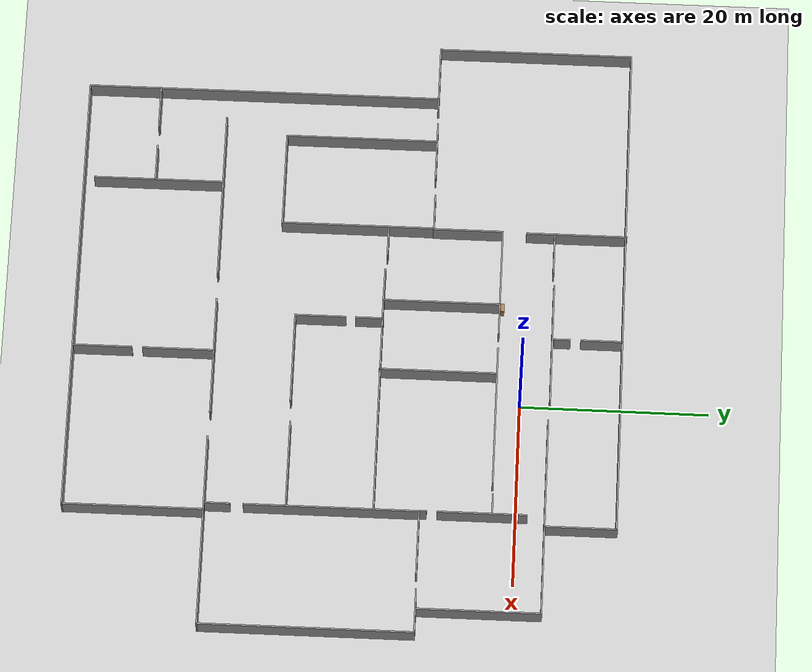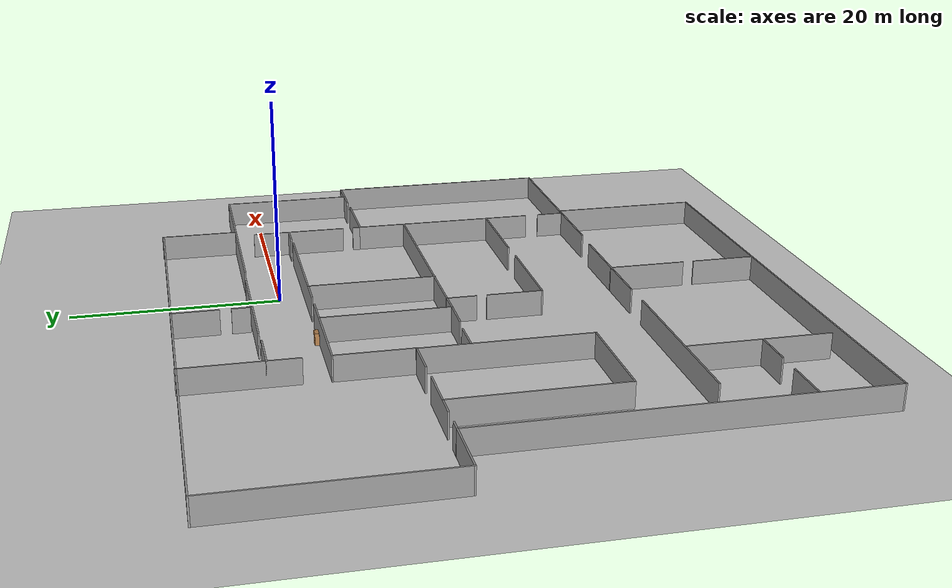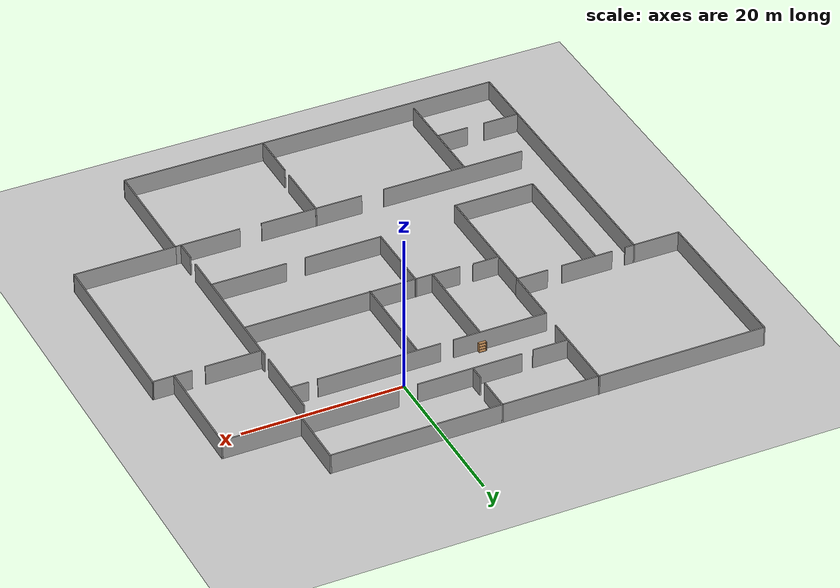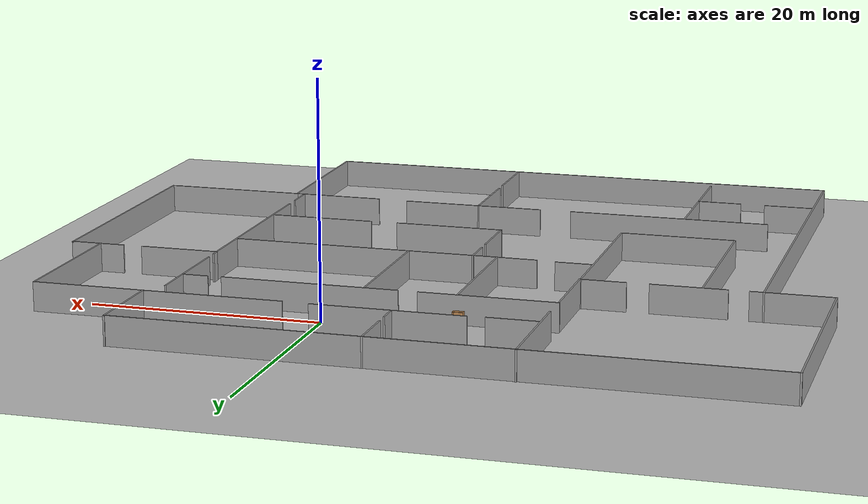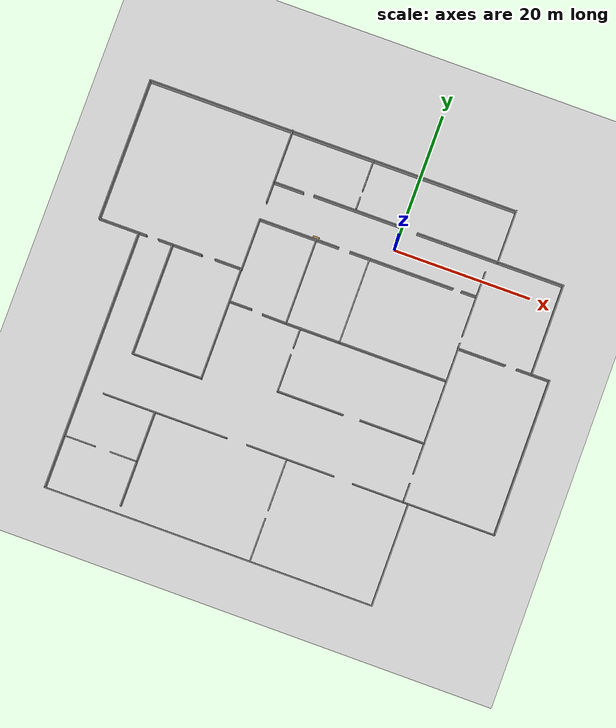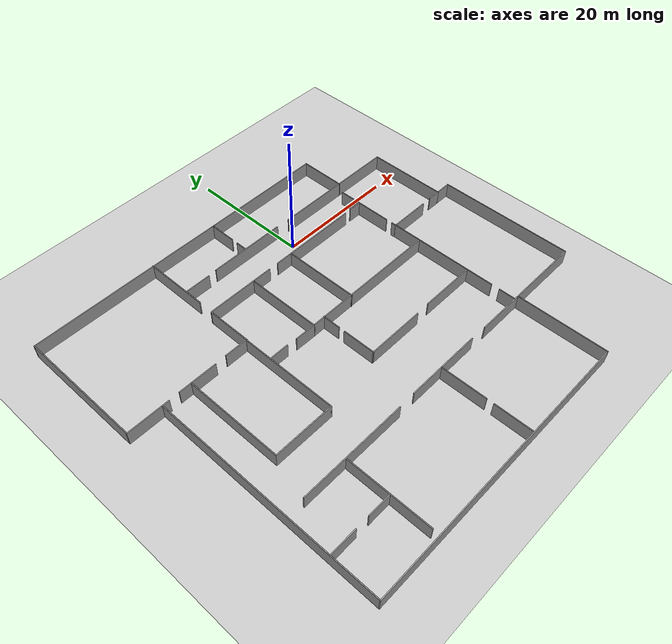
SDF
<sdf version="1.6">
 <world name="default">
  <light name="sun" type="directional">
   <pose>0 0 10 0 -0 0</pose>
   <diffuse>0.8 0.8 0.8 1</diffuse>
   <specular>0.2 0.2 0.2 1</specular>
   <attenuation>
    <range>1000</range>
    <constant>0.9</constant>
    <linear>0.01</linear>
    <quadratic>0.001</quadratic>
   </attenuation>
   <direction>-0.5 0.1 -0.9</direction>
  </light>
  <model name="ground_plane">
   <static>1</static>
   <link name="link">
    <collision name="collision">
     <geometry><plane><normal>0 0 1</normal><size>100 100</size></plane></geometry>
     <surface><friction><ode><mu>100</mu><mu2>50</mu2></ode></friction></surface>
    </collision>
    <visual name="visual">
     <cast_shadows>0</cast_shadows>
     <geometry><plane><normal>0 0 1</normal><size>100 100</size></plane></geometry>
     <material>
      <script><uri>file://media/materials/scripts/gazebo.material</uri><name>Gazebo/Grey</name></script>
     </material>
    </visual>
   </link>
  </model>
  <gravity>0 0 -9.8</gravity>
  <magnetic_field>6e-06 2.3e-05 -4.2e-05</magnetic_field>
  <atmosphere type="adiabatic"/>
  <physics name="default_physics" default="0" type="ode">
   <max_step_size>0.001</max_step_size>
   <real_time_factor>1</real_time_factor>
   <real_time_update_rate>1000</real_time_update_rate>
  </physics>
  <scene><ambient>0.4 0.4 0.4 1</ambient><background>0.7 0.7 0.7 1</background><shadows>1</shadows></scene>
  <audio><device>default</device></audio>
  <spherical_coordinates>
   <surface_model>EARTH_WGS84</surface_model>
   <latitude_deg>0</latitude_deg>
   <longitude_deg>0</longitude_deg>
   <elevation>0</elevation>
   <heading_deg>0</heading_deg>
  </spherical_coordinates>
  <model name="Untitled">
   <pose>-6.86367 -18.3853 0 0 -0 0</pose>
   <link name="Wall_10">
    <collision name="Wall_10_Collision">
     <geometry><box><size>48 0.15 2.5</size></box></geometry>
     <pose>0 0 1.25 0 -0 0</pose>
    </collision>
    <visual name="Wall_10_Visual">
     <pose>0 0 1.25 0 -0 0</pose>
     <geometry><box><size>48 0.15 2.5</size></box></geometry>
     <material>
      <script><uri>file://media/materials/scripts/gazebo.material</uri><name>Gazebo/Grey</name></script>
      <ambient>1 1 1 1</ambient>
     </material>
     <meta><layer>0</layer></meta>
    </visual>
    <pose>-3.38843 -29.0855 0 0 -0 -3.14158</pose>
   </link>
   <link name="Wall_11">
    <collision name="Wall_11_Collision">
     <geometry><box><size>37.681 0.15 2.5</size></box></geometry>
     <pose>0 0 1.25 0 -0 0</pose>
    </collision>
    <visual name="Wall_11_Visual">
     <pose>0 0 1.25 0 -0 0</pose>
     <geometry><box><size>37.681 0.15 2.5</size></box></geometry>
     <material>
      <script><uri>file://media/materials/scripts/gazebo.material</uri><name>Gazebo/Grey</name></script>
      <ambient>1 1 1 1</ambient>
     </material>
     <meta><layer>0</layer></meta>
    </visual>
    <pose>-27.3133 -10.3202 0 0 -0 1.5708</pose>
   </link>
   <link name="Wall_12">
    <collision name="Wall_12_Collision">
     <geometry><box><size>5.97327 0.15 2.5</size></box></geometry>
     <pose>0 0 1.25 0 -0 0</pose>
    </collision>
    <visual name="Wall_12_Visual">
     <pose>0 0 1.25 0 -0 0</pose>
     <geometry><box><size>5.97327 0.15 2.5</size></box></geometry>
     <material>
      <script><uri>file://media/materials/scripts/gazebo.material</uri><name>Gazebo/Grey</name></script>
      <ambient>1 1 1 1</ambient>
     </material>
     <meta><layer>0</layer></meta>
    </visual>
    <pose>-30.2248 8.44476 0 0 -0 -3.14142</pose>
   </link>
   <link name="Wall_13">
    <collision name="Wall_13_Collision">
     <geometry><box><size>20.708 0.15 2.5</size></box></geometry>
     <pose>0 0 1.25 0 -0 0</pose>
    </collision>
    <visual name="Wall_13_Visual">
     <pose>0 0 1.25 0 -0 0</pose>
     <geometry><box><size>20.708 0.15 2.5</size></box></geometry>
     <material>
      <script><uri>file://media/materials/scripts/gazebo.material</uri><name>Gazebo/Grey</name></script>
      <ambient>1 1 1 1</ambient>
     </material>
     <meta><layer>0</layer></meta>
    </visual>
    <pose>-33.1363 18.7233 0 0 -0 1.5708</pose>
   </link>
   <link name="Wall_18">
    <collision name="Wall_18_Collision">
     <geometry><box><size>8.25 0.15 2.5</size></box></geometry>
     <pose>0 0 1.25 0 -0 0</pose>
    </collision>
    <visual name="Wall_18_Visual">
     <pose>0 0 1.25 0 -0 0</pose>
     <geometry><box><size>8.25 0.15 2.5</size></box></geometry>
     <material>
      <script><uri>file://media/materials/scripts/gazebo.material</uri><name>Gazebo/Grey</name></script>
      <ambient>1 1 1 1</ambient>
     </material>
     <meta><layer>0</layer></meta>
    </visual>
    <pose>16.4865 -14.2353 0 0 -0 3.14159</pose>
   </link>
   <link name="Wall_2">
    <collision name="Wall_2_Collision">
     <geometry><box><size>54.223 0.15 2.5</size></box></geometry>
     <pose>0 0 1.25 0 -0 0</pose>
    </collision>
    <visual name="Wall_2_Visual">
     <pose>0 0 1.25 0 -0 0</pose>
     <geometry><box><size>54.223 0.15 2.5</size></box></geometry>
     <material>
      <script><uri>file://media/materials/scripts/gazebo.material</uri><name>Gazebo/Grey</name></script>
      <ambient>1 1 1 1</ambient>
     </material>
     <meta><layer>0</layer></meta>
    </visual>
    <pose>-6.09985 29.002 0 0 -0 0</pose>
   </link>
   <link name="Wall_20">
    <collision name="Wall_20_Collision">
     <geometry><box><size>12.869 0.15 2.5</size></box></geometry>
     <pose>0 0 1.25 0 -0 0</pose>
    </collision>
    <visual name="Wall_20_Visual">
     <pose>0 0 1.25 0 -0 0</pose>
     <geometry><box><size>12.869 0.15 2.5</size></box></geometry>
     <material>
      <script><uri>file://media/materials/scripts/gazebo.material</uri><name>Gazebo/Grey</name></script>
      <ambient>1 1 1 1</ambient>
     </material>
     <meta><layer>0</layer></meta>
    </visual>
    <pose>3.22315 -14.1347 0 0 -0 3.14159</pose>
   </link>
   <link name="Wall_22">
    <collision name="Wall_22_Collision">
     <geometry><box><size>18.15 0.15 2.5</size></box></geometry>
     <pose>0 0 1.25 0 -0 0</pose>
    </collision>
    <visual name="Wall_22_Visual">
     <pose>0 0 1.25 0 -0 0</pose>
     <geometry><box><size>18.15 0.15 2.5</size></box></geometry>
     <material>
      <script><uri>file://media/materials/scripts/gazebo.material</uri><name>Gazebo/Grey</name></script>
      <ambient>1 1 1 1</ambient>
     </material>
     <meta><layer>0</layer></meta>
    </visual>
    <pose>-15.1363 -14.2037 0 0 -0 3.14159</pose>
   </link>
   <link name="Wall_24">
    <collision name="Wall_24_Collision">
     <geometry><box><size>13.75 0.15 2.5</size></box></geometry>
     <pose>0 0 1.25 0 -0 0</pose>
    </collision>
    <visual name="Wall_24_Visual">
     <pose>0 0 1.25 0 -0 0</pose>
     <geometry><box><size>13.75 0.15 2.5</size></box></geometry>
     <material>
      <script><uri>file://media/materials/scripts/gazebo.material</uri><name>Gazebo/Grey</name></script>
      <ambient>1 1 1 1</ambient>
     </material>
     <meta><layer>0</layer></meta>
    </visual>
    <pose>-16.6456 -21.1328 0 0 -0 -1.5708</pose>
   </link>
   <link name="Wall_26">
    <collision name="Wall_26_Collision">
     <geometry><box><size>7.636 0.15 2.5</size></box></geometry>
     <pose>0 0 1.25 0 -0 0</pose>
    </collision>
    <visual name="Wall_26_Visual">
     <pose>0 0 1.25 0 -0 0</pose>
     <geometry><box><size>7.636 0.15 2.5</size></box></geometry>
     <material>
      <script><uri>file://media/materials/scripts/gazebo.material</uri><name>Gazebo/Grey</name></script>
      <ambient>1 1 1 1</ambient>
     </material>
     <meta><layer>0</layer></meta>
    </visual>
    <pose>2.68865 -17.8717 0 0 -0 -1.5708</pose>
   </link>
   <link name="Wall_28">
    <collision name="Wall_28_Collision">
     <geometry><box><size>6.25 0.15 2.5</size></box></geometry>
     <pose>0 0 1.25 0 -0 0</pose>
    </collision>
    <visual name="Wall_28_Visual">
     <pose>0 0 1.25 0 -0 0</pose>
     <geometry><box><size>6.25 0.15 2.5</size></box></geometry>
     <material>
      <script><uri>file://media/materials/scripts/gazebo.material</uri><name>Gazebo/Grey</name></script>
      <ambient>1 1 1 1</ambient>
     </material>
     <meta><layer>0</layer></meta>
    </visual>
    <pose>2.68817 -25.8958 0 0 -0 -1.5708</pose>
   </link>
   <link name="Wall_3">
    <collision name="Wall_3_Collision">
     <geometry><box><size>7.74888 0.15 2.5</size></box></geometry>
     <pose>0 0 1.25 0 -0 0</pose>
    </collision>
    <visual name="Wall_3_Visual">
     <pose>0 0 1.25 0 -0 0</pose>
     <geometry><box><size>7.74888 0.15 2.5</size></box></geometry>
     <material>
      <script><uri>file://media/materials/scripts/gazebo.material</uri><name>Gazebo/Grey</name></script>
      <ambient>1 1 1 1</ambient>
     </material>
     <meta><layer>0</layer></meta>
    </visual>
    <pose>20.9366 25.2641 0 0 -0 -1.57082</pose>
   </link>
   <link name="Wall_30">
    <collision name="Wall_30_Collision">
     <geometry><box><size>4.5 0.15 2.5</size></box></geometry>
     <pose>0 0 1.25 0 -0 0</pose>
    </collision>
    <visual name="Wall_30_Visual">
     <pose>0 0 1.25 0 -0 0</pose>
     <geometry><box><size>4.5 0.15 2.5</size></box></geometry>
     <material>
      <script><uri>file://media/materials/scripts/gazebo.material</uri><name>Gazebo/Grey</name></script>
      <ambient>1 1 1 1</ambient>
     </material>
     <meta><layer>0</layer></meta>
    </visual>
    <pose>-25.0531 -21.4469 0 0 -0 0</pose>
   </link>
   <link name="Wall_32">
    <collision name="Wall_32_Collision">
     <geometry><box><size>4 0.15 2.5</size></box></geometry>
     <pose>0 0 1.25 0 -0 0</pose>
    </collision>
    <visual name="Wall_32_Visual">
     <pose>0 0 1.25 0 -0 0</pose>
     <geometry><box><size>4 0.15 2.5</size></box></geometry>
     <material>
      <script><uri>file://media/materials/scripts/gazebo.material</uri><name>Gazebo/Grey</name></script>
      <ambient>1 1 1 1</ambient>
     </material>
     <meta><layer>0</layer></meta>
    </visual>
    <pose>-18.6071 -21.4469 0 0 -0 3.14159</pose>
   </link>
   <link name="Wall_34">
    <collision name="Wall_34_Collision">
     <geometry><box><size>2.25 0.15 2.5</size></box></geometry>
     <pose>0 0 1.25 0 -0 0</pose>
    </collision>
    <visual name="Wall_34_Visual">
     <pose>0 0 1.25 0 -0 0</pose>
     <geometry><box><size>2.25 0.15 2.5</size></box></geometry>
     <material>
      <script><uri>file://media/materials/scripts/gazebo.material</uri><name>Gazebo/Grey</name></script>
      <ambient>1 1 1 1</ambient>
     </material>
     <meta><layer>0</layer></meta>
    </visual>
    <pose>29.4865 8.36469 0 0 -0 3.14159</pose>
   </link>
   <link name="Wall_36">
    <collision name="Wall_36_Collision">
     <geometry><box><size>2.75 0.15 2.5</size></box></geometry>
     <pose>0 0 1.25 0 -0 0</pose>
    </collision>
    <visual name="Wall_36_Visual">
     <pose>0 0 1.25 0 -0 0</pose>
     <geometry><box><size>2.75 0.15 2.5</size></box></geometry>
     <material>
      <script><uri>file://media/materials/scripts/gazebo.material</uri><name>Gazebo/Grey</name></script>
      <ambient>1 1 1 1</ambient>
     </material>
     <meta><layer>0</layer></meta>
    </visual>
    <pose>19.7986 -12.8292 0 0 -0 1.5708</pose>
   </link>
   <link name="Wall_38">
    <collision name="Wall_38_Collision">
     <geometry><box><size>18.5 0.15 2.5</size></box></geometry>
     <pose>0 0 1.25 0 -0 0</pose>
    </collision>
    <visual name="Wall_38_Visual">
     <pose>0 0 1.25 0 -0 0</pose>
     <geometry><box><size>18.5 0.15 2.5</size></box></geometry>
     <material>
      <script><uri>file://media/materials/scripts/gazebo.material</uri><name>Gazebo/Grey</name></script>
      <ambient>1 1 1 1</ambient>
     </material>
     <meta><layer>0</layer></meta>
    </visual>
    <pose>19.7986 -0.86493 0 0 -0 1.5708</pose>
   </link>
   <link name="Wall_4">
    <collision name="Wall_4_Collision">
     <geometry><box><size>9.75 0.15 2.5</size></box></geometry>
     <pose>0 0 1.25 0 -0 0</pose>
    </collision>
    <visual name="Wall_4_Visual">
     <pose>0 0 1.25 0 -0 0</pose>
     <geometry><box><size>9.75 0.15 2.5</size></box></geometry>
     <material>
      <script><uri>file://media/materials/scripts/gazebo.material</uri><name>Gazebo/Grey</name></script>
      <ambient>1 1 1 1</ambient>
     </material>
     <meta><layer>0</layer></meta>
    </visual>
    <pose>25.7365 21.4647 0 0 -0 0</pose>
   </link>
   <link name="Wall_40">
    <collision name="Wall_40_Collision">
     <geometry><box><size>7 0.15 2.5</size></box></geometry>
     <pose>0 0 1.25 0 -0 0</pose>
    </collision>
    <visual name="Wall_40_Visual">
     <pose>0 0 1.25 0 -0 0</pose>
     <geometry><box><size>7 0.15 2.5</size></box></geometry>
     <material>
      <script><uri>file://media/materials/scripts/gazebo.material</uri><name>Gazebo/Grey</name></script>
      <ambient>1 1 1 1</ambient>
     </material>
     <meta><layer>0</layer></meta>
    </visual>
    <pose>23.2236 8.31007 0 0 -0 0</pose>
   </link>
   <link name="Wall_42">
    <collision name="Wall_42_Collision">
     <geometry><box><size>0.75 0.15 2.5</size></box></geometry>
     <pose>0 0 1.25 0 -0 0</pose>
    </collision>
    <visual name="Wall_42_Visual">
     <pose>0 0 1.25 0 -0 0</pose>
     <geometry><box><size>0.75 0.15 2.5</size></box></geometry>
     <material>
      <script><uri>file://media/materials/scripts/gazebo.material</uri><name>Gazebo/Grey</name></script>
      <ambient>1 1 1 1</ambient>
     </material>
     <meta><layer>0</layer></meta>
    </visual>
    <pose>19.7645 8.73044 0 0 -0 1.5708</pose>
   </link>
   <link name="Wall_44">
    <collision name="Wall_44_Collision">
     <geometry><box><size>9.5 0.15 2.5</size></box></geometry>
     <pose>0 0 1.25 0 -0 0</pose>
    </collision>
    <visual name="Wall_44_Visual">
     <pose>0 0 1.25 0 -0 0</pose>
     <geometry><box><size>9.5 0.15 2.5</size></box></geometry>
     <material>
      <script><uri>file://media/materials/scripts/gazebo.material</uri><name>Gazebo/Grey</name></script>
      <ambient>1 1 1 1</ambient>
     </material>
     <meta><layer>0</layer></meta>
    </visual>
    <pose>19.7645 14.9017 0 0 -0 1.5708</pose>
   </link>
   <link name="Wall_47">
    <collision name="Wall_47_Collision">
     <geometry><box><size>12 0.15 2.5</size></box></geometry>
     <pose>0 0 1.25 0 -0 0</pose>
    </collision>
    <visual name="Wall_47_Visual">
     <pose>0 0 1.25 0 -0 0</pose>
     <geometry><box><size>12 0.15 2.5</size></box></geometry>
     <material>
      <script><uri>file://media/materials/scripts/gazebo.material</uri><name>Gazebo/Grey</name></script>
      <ambient>1 1 1 1</ambient>
     </material>
     <meta><layer>0</layer></meta>
    </visual>
    <pose>15.0115 21.4647 0 0 -0 3.14159</pose>
   </link>
   <link name="Wall_49">
    <collision name="Wall_49_Collision">
     <geometry><box><size>1.25 0.15 2.5</size></box></geometry>
     <pose>0 0 1.25 0 -0 0</pose>
    </collision>
    <visual name="Wall_49_Visual">
     <pose>0 0 1.25 0 -0 0</pose>
     <geometry><box><size>1.25 0.15 2.5</size></box></geometry>
     <material>
      <script><uri>file://media/materials/scripts/gazebo.material</uri><name>Gazebo/Grey</name></script>
      <ambient>1 1 1 1</ambient>
     </material>
     <meta><layer>0</layer></meta>
    </visual>
    <pose>-26.7633 8.44526 0 0 -0 0</pose>
   </link>
   <link name="Wall_5">
    <collision name="Wall_5_Collision">
     <geometry><box><size>13.25 0.15 2.5</size></box></geometry>
     <pose>0 0 1.25 0 -0 0</pose>
    </collision>
    <visual name="Wall_5_Visual">
     <pose>0 0 1.25 0 -0 0</pose>
     <geometry><box><size>13.25 0.15 2.5</size></box></geometry>
     <material>
      <script><uri>file://media/materials/scripts/gazebo.material</uri><name>Gazebo/Grey</name></script>
      <ambient>1 1 1 1</ambient>
     </material>
     <meta><layer>0</layer></meta>
    </visual>
    <pose>30.5365 14.9147 0 0 -0 -1.5708</pose>
   </link>
   <link name="Wall_51">
    <collision name="Wall_51_Collision">
     <geometry><box><size>6.5 0.15 2.5</size></box></geometry>
     <pose>0 0 1.25 0 -0 0</pose>
    </collision>
    <visual name="Wall_51_Visual">
     <pose>0 0 1.25 0 -0 0</pose>
     <geometry><box><size>6.5 0.15 2.5</size></box></geometry>
     <material>
      <script><uri>file://media/materials/scripts/gazebo.material</uri><name>Gazebo/Grey</name></script>
      <ambient>1 1 1 1</ambient>
     </material>
     <meta><layer>0</layer></meta>
    </visual>
    <pose>-21.2029 8.48047 0 0 -0 0</pose>
   </link>
   <link name="Wall_53">
    <collision name="Wall_53_Collision">
     <geometry><box><size>4 0.15 2.5</size></box></geometry>
     <pose>0 0 1.25 0 -0 0</pose>
    </collision>
    <visual name="Wall_53_Visual">
     <pose>0 0 1.25 0 -0 0</pose>
     <geometry><box><size>4 0.15 2.5</size></box></geometry>
     <material>
      <script><uri>file://media/materials/scripts/gazebo.material</uri><name>Gazebo/Grey</name></script>
      <ambient>1 1 1 1</ambient>
     </material>
     <meta><layer>0</layer></meta>
    </visual>
    <pose>-14.0851 8.54199 0 0 -0 0</pose>
   </link>
   <link name="Wall_54">
    <collision name="Wall_54_Collision">
     <geometry><box><size>7.5 0.15 2.5</size></box></geometry>
     <pose>0 0 1.25 0 -0 0</pose>
    </collision>
    <visual name="Wall_54_Visual">
     <pose>0 0 1.25 0 -0 0</pose>
     <geometry><box><size>7.5 0.15 2.5</size></box></geometry>
     <material>
      <script><uri>file://media/materials/scripts/gazebo.material</uri><name>Gazebo/Grey</name></script>
      <ambient>1 1 1 1</ambient>
     </material>
     <meta><layer>0</layer></meta>
    </visual>
    <pose>-12.1602 12.2171 0 0 -0 1.57083</pose>
   </link>
   <link name="Wall_56">
    <collision name="Wall_56_Collision">
     <geometry><box><size>11.75 0.15 2.5</size></box></geometry>
     <pose>0 0 1.25 0 -0 0</pose>
    </collision>
    <visual name="Wall_56_Visual">
     <pose>0 0 1.25 0 -0 0</pose>
     <geometry><box><size>11.75 0.15 2.5</size></box></geometry>
     <material>
      <script><uri>file://media/materials/scripts/gazebo.material</uri><name>Gazebo/Grey</name></script>
      <ambient>1 1 1 1</ambient>
     </material>
     <meta><layer>0</layer></meta>
    </visual>
    <pose>-6.36035 15.8923 0 0 -0 0</pose>
   </link>
   <link name="Wall_58">
    <collision name="Wall_58_Collision">
     <geometry><box><size>16.25 0.15 2.5</size></box></geometry>
     <pose>0 0 1.25 0 -0 0</pose>
    </collision>
    <visual name="Wall_58_Visual">
     <pose>0 0 1.25 0 -0 0</pose>
     <geometry><box><size>16.25 0.15 2.5</size></box></geometry>
     <material>
      <script><uri>file://media/materials/scripts/gazebo.material</uri><name>Gazebo/Grey</name></script>
      <ambient>1 1 1 1</ambient>
     </material>
     <meta><layer>0</layer></meta>
    </visual>
    <pose>-22.3294 0.427688 0 0 -0 -1.5708</pose>
   </link>
   <link name="Wall_59">
    <collision name="Wall_59_Collision">
     <geometry><box><size>10.25 0.15 2.5</size></box></geometry>
     <pose>0 0 1.25 0 -0 0</pose>
    </collision>
    <visual name="Wall_59_Visual">
     <pose>0 0 1.25 0 -0 0</pose>
     <geometry><box><size>10.25 0.15 2.5</size></box></geometry>
     <material>
      <script><uri>file://media/materials/scripts/gazebo.material</uri><name>Gazebo/Grey</name></script>
      <ambient>1 1 1 1</ambient>
     </material>
     <meta><layer>0</layer></meta>
    </visual>
    <pose>-17.2794 -7.62253 0 0 -0 -4.2e-05</pose>
   </link>
   <link name="Wall_6">
    <collision name="Wall_6_Collision">
     <geometry><box><size>2.75 0.15 2.5</size></box></geometry>
     <pose>0 0 1.25 0 -0 0</pose>
    </collision>
    <visual name="Wall_6_Visual">
     <pose>0 0 1.25 0 -0 0</pose>
     <geometry><box><size>2.75 0.15 2.5</size></box></geometry>
     <material>
      <script><uri>file://media/materials/scripts/gazebo.material</uri><name>Gazebo/Grey</name></script>
      <ambient>1 1 1 1</ambient>
     </material>
     <meta><layer>0</layer></meta>
    </visual>
    <pose>31.8365 8.36469 0 0 -0 0</pose>
   </link>
   <link name="Wall_60">
    <collision name="Wall_60_Collision">
     <geometry><box><size>16.315 0.15 2.5</size></box></geometry>
     <pose>0 0 1.25 0 -0 0</pose>
    </collision>
    <visual name="Wall_60_Visual">
     <pose>0 0 1.25 0 -0 0</pose>
     <geometry><box><size>16.315 0.15 2.5</size></box></geometry>
     <material>
      <script><uri>file://media/materials/scripts/gazebo.material</uri><name>Gazebo/Grey</name></script>
      <ambient>1 1 1 1</ambient>
     </material>
     <meta><layer>0</layer></meta>
    </visual>
    <pose>-12.2293 0.459762 0 0 -0 1.5708</pose>
   </link>
   <link name="Wall_62">
    <collision name="Wall_62_Collision">
     <geometry><box><size>3.25 0.15 2.5</size></box></geometry>
     <pose>0 0 1.25 0 -0 0</pose>
    </collision>
    <visual name="Wall_62_Visual">
     <pose>0 0 1.25 0 -0 0</pose>
     <geometry><box><size>3.25 0.15 2.5</size></box></geometry>
     <material>
      <script><uri>file://media/materials/scripts/gazebo.material</uri><name>Gazebo/Grey</name></script>
      <ambient>1 1 1 1</ambient>
     </material>
     <meta><layer>0</layer></meta>
    </visual>
    <pose>-10.5441 3.73374 0 0 -0 0</pose>
   </link>
   <link name="Wall_64">
    <collision name="Wall_64_Collision">
     <geometry><box><size>3.50032 0.15 2.5</size></box></geometry>
     <pose>0 0 1.25 0 -0 0</pose>
    </collision>
    <visual name="Wall_64_Visual">
     <pose>0 0 1.25 0 -0 0</pose>
     <geometry><box><size>3.50032 0.15 2.5</size></box></geometry>
     <material>
      <script><uri>file://media/materials/scripts/gazebo.material</uri><name>Gazebo/Grey</name></script>
      <ambient>1 1 1 1</ambient>
     </material>
     <meta><layer>0</layer></meta>
    </visual>
    <pose>-5.58844 3.55439 0 0 -0 -0.013887</pose>
   </link>
   <link name="Wall_65">
    <collision name="Wall_65_Collision">
     <geometry><box><size>12.5 0.15 2.5</size></box></geometry>
     <pose>0 0 1.25 0 -0 0</pose>
    </collision>
    <visual name="Wall_65_Visual">
     <pose>0 0 1.25 0 -0 0</pose>
     <geometry><box><size>12.5 0.15 2.5</size></box></geometry>
     <material>
      <script><uri>file://media/materials/scripts/gazebo.material</uri><name>Gazebo/Grey</name></script>
      <ambient>1 1 1 1</ambient>
     </material>
     <meta><layer>0</layer></meta>
    </visual>
    <pose>-3.82039 9.70612 0 0 -0 1.5708</pose>
   </link>
   <link name="Wall_67">
    <collision name="Wall_67_Collision">
     <geometry><box><size>12.5 0.15 2.5</size></box></geometry>
     <pose>0 0 1.25 0 -0 0</pose>
    </collision>
    <visual name="Wall_67_Visual">
     <pose>0 0 1.25 0 -0 0</pose>
     <geometry><box><size>12.5 0.15 2.5</size></box></geometry>
     <material>
      <script><uri>file://media/materials/scripts/gazebo.material</uri><name>Gazebo/Grey</name></script>
      <ambient>1 1 1 1</ambient>
     </material>
     <meta><layer>0</layer></meta>
    </visual>
    <pose>4.03939 9.65312 0 0 -0 -1.5708</pose>
   </link>
   <link name="Wall_7">
    <collision name="Wall_7_Collision">
     <geometry><box><size>22.75 0.15 2.5</size></box></geometry>
     <pose>0 0 1.25 0 -0 0</pose>
    </collision>
    <visual name="Wall_7_Visual">
     <pose>0 0 1.25 0 -0 0</pose>
     <geometry><box><size>22.75 0.15 2.5</size></box></geometry>
     <material>
      <script><uri>file://media/materials/scripts/gazebo.material</uri><name>Gazebo/Grey</name></script>
      <ambient>1 1 1 1</ambient>
     </material>
     <meta><layer>0</layer></meta>
    </visual>
    <pose>33.1365 -2.93531 0 0 -0 -1.5708</pose>
   </link>
   <link name="Wall_70">
    <collision name="Wall_70_Collision">
     <geometry><box><size>8 0.15 2.5</size></box></geometry>
     <pose>0 0 1.25 0 -0 0</pose>
    </collision>
    <visual name="Wall_70_Visual">
     <pose>0 0 1.25 0 -0 0</pose>
     <geometry><box><size>8 0.15 2.5</size></box></geometry>
     <material>
      <script><uri>file://media/materials/scripts/gazebo.material</uri><name>Gazebo/Grey</name></script>
      <ambient>1 1 1 1</ambient>
     </material>
     <meta><layer>0</layer></meta>
    </visual>
    <pose>0.104607 3.53112 0 0 -0 0</pose>
   </link>
   <link name="Wall_72">
    <collision name="Wall_72_Collision">
     <geometry><box><size>15.25 0.15 2.5</size></box></geometry>
     <pose>0 0 1.25 0 -0 0</pose>
    </collision>
    <visual name="Wall_72_Visual">
     <pose>0 0 1.25 0 -0 0</pose>
     <geometry><box><size>15.25 0.15 2.5</size></box></geometry>
     <material>
      <script><uri>file://media/materials/scripts/gazebo.material</uri><name>Gazebo/Grey</name></script>
      <ambient>1 1 1 1</ambient>
     </material>
     <meta><layer>0</layer></meta>
    </visual>
    <pose>8.74898 15.8864 0 0 -0 0</pose>
   </link>
   <link name="Wall_74">
    <collision name="Wall_74_Collision">
     <geometry><box><size>2.25 0.15 2.5</size></box></geometry>
     <pose>0 0 1.25 0 -0 0</pose>
    </collision>
    <visual name="Wall_74_Visual">
     <pose>0 0 1.25 0 -0 0</pose>
     <geometry><box><size>2.25 0.15 2.5</size></box></geometry>
     <material>
      <script><uri>file://media/materials/scripts/gazebo.material</uri><name>Gazebo/Grey</name></script>
      <ambient>1 1 1 1</ambient>
     </material>
     <meta><layer>0</layer></meta>
    </visual>
    <pose>18.6423 15.9567 0 0 -0 0</pose>
   </link>
   <link name="Wall_76">
    <collision name="Wall_76_Collision">
     <geometry><box><size>15.75 0.15 2.5</size></box></geometry>
     <pose>0 0 1.25 0 -0 0</pose>
    </collision>
    <visual name="Wall_76_Visual">
     <pose>0 0 1.25 0 -0 0</pose>
     <geometry><box><size>15.75 0.15 2.5</size></box></geometry>
     <material>
      <script><uri>file://media/materials/scripts/gazebo.material</uri><name>Gazebo/Grey</name></script>
      <ambient>1 1 1 1</ambient>
     </material>
     <meta><layer>0</layer></meta>
    </visual>
    <pose>11.8296 3.53112 0 0 -0 0</pose>
   </link>
   <link name="Wall_78">
    <collision name="Wall_78_Collision">
     <geometry><box><size>3 0.15 2.5</size></box></geometry>
     <pose>0 0 1.25 0 -0 0</pose>
    </collision>
    <visual name="Wall_78_Visual">
     <pose>0 0 1.25 0 -0 0</pose>
     <geometry><box><size>3 0.15 2.5</size></box></geometry>
     <material>
      <script><uri>file://media/materials/scripts/gazebo.material</uri><name>Gazebo/Grey</name></script>
      <ambient>1 1 1 1</ambient>
     </material>
     <meta><layer>0</layer></meta>
    </visual>
    <pose>-1.69561 2.15219 0 0 -0 -1.5708</pose>
   </link>
   <link name="Wall_8">
    <collision name="Wall_8_Collision">
     <geometry><box><size>12.75 0.15 2.5</size></box></geometry>
     <pose>0 0 1.25 0 -0 0</pose>
    </collision>
    <visual name="Wall_8_Visual">
     <pose>0 0 1.25 0 -0 0</pose>
     <geometry><box><size>12.75 0.15 2.5</size></box></geometry>
     <material>
      <script><uri>file://media/materials/scripts/gazebo.material</uri><name>Gazebo/Grey</name></script>
      <ambient>1 1 1 1</ambient>
     </material>
     <meta><layer>0</layer></meta>
    </visual>
    <pose>26.8365 -14.2353 0 0 -0 3.14159</pose>
   </link>
   <link name="Wall_80">
    <collision name="Wall_80_Collision">
     <geometry><box><size>9.5 0.15 2.5</size></box></geometry>
     <pose>0 0 1.25 0 -0 0</pose>
    </collision>
    <visual name="Wall_80_Visual">
     <pose>0 0 1.25 0 -0 0</pose>
     <geometry><box><size>9.5 0.15 2.5</size></box></geometry>
     <material>
      <script><uri>file://media/materials/scripts/gazebo.material</uri><name>Gazebo/Grey</name></script>
      <ambient>1 1 1 1</ambient>
     </material>
     <meta><layer>0</layer></meta>
    </visual>
    <pose>15.1091 -5.6398 0 0 -0 3.14159</pose>
   </link>
   <link name="Wall_82">
    <collision name="Wall_82_Collision">
     <geometry><box><size>9.75 0.15 2.5</size></box></geometry>
     <pose>0 0 1.25 0 -0 0</pose>
    </collision>
    <visual name="Wall_82_Visual">
     <pose>0 0 1.25 0 -0 0</pose>
     <geometry><box><size>9.75 0.15 2.5</size></box></geometry>
     <material>
      <script><uri>file://media/materials/scripts/gazebo.material</uri><name>Gazebo/Grey</name></script>
      <ambient>1 1 1 1</ambient>
     </material>
     <meta><layer>0</layer></meta>
    </visual>
    <pose>3.09992 -5.73338 0 0 -0 3.14159</pose>
   </link>
   <link name="Wall_83">
    <collision name="Wall_83_Collision">
     <geometry><box><size>5.5 0.15 2.5</size></box></geometry>
     <pose>0 0 1.25 0 -0 0</pose>
    </collision>
    <visual name="Wall_83_Visual">
     <pose>0 0 1.25 0 -0 0</pose>
     <geometry><box><size>5.5 0.15 2.5</size></box></geometry>
     <material>
      <script><uri>file://media/materials/scripts/gazebo.material</uri><name>Gazebo/Grey</name></script>
      <ambient>1 1 1 1</ambient>
     </material>
     <meta><layer>0</layer></meta>
    </visual>
    <pose>-1.70008 -3.05838 0 0 -0 1.5708</pose>
   </link>
   <link name="Wall_85">
    <collision name="Wall_85_Collision">
     <geometry><box><size>10.75 0.15 2.5</size></box></geometry>
     <pose>0 0 1.25 0 -0 0</pose>
    </collision>
    <visual name="Wall_85_Visual">
     <pose>0 0 1.25 0 -0 0</pose>
     <geometry><box><size>10.75 0.15 2.5</size></box></geometry>
     <material>
      <script><uri>file://media/materials/scripts/gazebo.material</uri><name>Gazebo/Grey</name></script>
      <ambient>1 1 1 1</ambient>
     </material>
     <meta><layer>0</layer></meta>
    </visual>
    <pose>-12.09 23.7857 0 0 -0 1.5708</pose>
   </link>
   <link name="Wall_87">
    <collision name="Wall_87_Collision">
     <geometry><box><size>4.5 0.15 2.5</size></box></geometry>
     <pose>0 0 1.25 0 -0 0</pose>
    </collision>
    <visual name="Wall_87_Visual">
     <pose>0 0 1.25 0 -0 0</pose>
     <geometry><box><size>4.5 0.15 2.5</size></box></geometry>
     <material>
      <script><uri>file://media/materials/scripts/gazebo.material</uri><name>Gazebo/Grey</name></script>
      <ambient>1 1 1 1</ambient>
     </material>
     <meta><layer>0</layer></meta>
    </visual>
    <pose>-9.91499 21.4558 0 0 -0 0</pose>
   </link>
   <link name="Wall_89">
    <collision name="Wall_89_Collision">
     <geometry><box><size>13 0.15 2.5</size></box></geometry>
     <pose>0 0 1.25 0 -0 0</pose>
    </collision>
    <visual name="Wall_89_Visual">
     <pose>0 0 1.25 0 -0 0</pose>
     <geometry><box><size>13 0.15 2.5</size></box></geometry>
     <material>
      <script><uri>file://media/materials/scripts/gazebo.material</uri><name>Gazebo/Grey</name></script>
      <ambient>1 1 1 1</ambient>
     </material>
     <meta><layer>0</layer></meta>
    </visual>
    <pose>0.275223 21.5796 0 0 -0 0</pose>
   </link>
   <link name="Wall_9">
    <collision name="Wall_9_Collision">
     <geometry><box><size>15 0.15 2.5</size></box></geometry>
     <pose>0 0 1.25 0 -0 0</pose>
    </collision>
    <visual name="Wall_9_Visual">
     <pose>0 0 1.25 0 -0 0</pose>
     <geometry><box><size>15 0.15 2.5</size></box></geometry>
     <material>
      <script><uri>file://media/materials/scripts/gazebo.material</uri><name>Gazebo/Grey</name></script>
      <ambient>1 1 1 1</ambient>
     </material>
     <meta><layer>0</layer></meta>
    </visual>
    <pose>20.5365 -21.6603 0 0 -0 -1.5708</pose>
   </link>
   <link name="Wall_91">
    <collision name="Wall_91_Collision">
     <geometry><box><size>4.5 0.15 2.5</size></box></geometry>
     <pose>0 0 1.25 0 -0 0</pose>
    </collision>
    <visual name="Wall_91_Visual">
     <pose>0 0 1.25 0 -0 0</pose>
     <geometry><box><size>4.5 0.15 2.5</size></box></geometry>
     <material>
      <script><uri>file://media/materials/scripts/gazebo.material</uri><name>Gazebo/Grey</name></script>
      <ambient>1 1 1 1</ambient>
     </material>
     <meta><layer>0</layer></meta>
    </visual>
    <pose>-0.085804 26.8299 0 0 -0 -1.5708</pose>
   </link>
   <link name="Wall_93">
    <collision name="Wall_93_Collision">
     <geometry><box><size>1.75 0.15 2.5</size></box></geometry>
     <pose>0 0 1.25 0 -0 0</pose>
    </collision>
    <visual name="Wall_93_Visual">
     <pose>0 0 1.25 0 -0 0</pose>
     <geometry><box><size>1.75 0.15 2.5</size></box></geometry>
     <material>
      <script><uri>file://media/materials/scripts/gazebo.material</uri><name>Gazebo/Grey</name></script>
      <ambient>1 1 1 1</ambient>
     </material>
     <meta><layer>0</layer></meta>
    </visual>
    <pose>-0.085804 22.6359 0 0 -0 -1.5708</pose>
   </link>
   <static>1</static>
  </model>
  <model name="bookshelf">
   <static>1</static>
   <link name="link">
    <inertial><mass>1</mass></inertial>
    <collision name="back">
     <pose>0 0.005 0.6 0 -0 0</pose>
     <geometry><box><size>0.9 0.01 1.2</size></box></geometry>
    </collision>
    <visual name="visual1">
     <pose>0 0.005 0.6 0 -0 0</pose>
     <geometry><box><size>0.9 0.01 1.2</size></box></geometry>
     <material>
      <script><uri>file://media/materials/scripts/gazebo.material</uri><name>Gazebo/Wood</name></script>
     </material>
    </visual>
    <collision name="left_side">
     <pose>0.45 -0.195 0.6 0 -0 0</pose>
     <geometry><box><size>0.02 0.4 1.2</size></box></geometry>
    </collision>
    <visual name="visual2">
     <pose>0.45 -0.195 0.6 0 -0 0</pose>
     <geometry><box><size>0.02 0.4 1.2</size></box></geometry>
     <material>
      <script><uri>file://media/materials/scripts/gazebo.material</uri><name>Gazebo/Wood</name></script>
     </material>
    </visual>
    <collision name="right_side">
     <pose>-0.45 -0.195 0.6 0 -0 0</pose>
     <geometry><box><size>0.02 0.4 1.2</size></box></geometry>
    </collision>
    <visual name="visual3">
     <pose>-0.45 -0.195 0.6 0 -0 0</pose>
     <geometry><box><size>0.02 0.4 1.2</size></box></geometry>
     <material>
      <script><uri>file://media/materials/scripts/gazebo.material</uri><name>Gazebo/Wood</name></script>
     </material>
    </visual>
    <collision name="bottom">
     <pose>0 -0.195 0.03 0 -0 0</pose>
     <geometry><box><size>0.88 0.4 0.06</size></box></geometry>
    </collision>
    <visual name="visual4">
     <pose>0 -0.195 0.03 0 -0 0</pose>
     <geometry><box><size>0.88 0.4 0.06</size></box></geometry>
     <material>
      <script><uri>file://media/materials/scripts/gazebo.material</uri><name>Gazebo/Wood</name></script>
     </material>
    </visual>
    <collision name="top">
     <pose>0 -0.195 1.19 0 -0 0</pose>
     <geometry><box><size>0.88 0.4 0.02</size></box></geometry>
    </collision>
    <visual name="visual5">
     <pose>0 -0.195 1.19 0 -0 0</pose>
     <geometry><box><size>0.88 0.4 0.02</size></box></geometry>
     <material>
      <script><uri>file://media/materials/scripts/gazebo.material</uri><name>Gazebo/Wood</name></script>
     </material>
    </visual>
    <collision name="low_shelf">
     <pose>0 -0.195 0.43 0 -0 0</pose>
     <geometry><box><size>0.88 0.4 0.02</size></box></geometry>
    </collision>
    <visual name="visual6">
     <pose>0 -0.195 0.43 0 -0 0</pose>
     <geometry><box><size>0.88 0.4 0.02</size></box></geometry>
     <material>
      <script><uri>file://media/materials/scripts/gazebo.material</uri><name>Gazebo/Wood</name></script>
     </material>
    </visual>
    <collision name="high_shelf">
     <pose>0 -0.195 0.8 0 -0 0</pose>
     <geometry><box><size>0.88 0.4 0.02</size></box></geometry>
    </collision>
    <visual name="visual7">
     <pose>0 -0.195 0.8 0 -0 0</pose>
     <geometry><box><size>0.88 0.4 0.02</size></box></geometry>
     <material>
      <script><uri>file://media/materials/scripts/gazebo.material</uri><name>Gazebo/Wood</name></script>
     </material>
    </visual>
   </link>
   <pose>-10.832 -2.39744 0 0 -0 3.14</pose>
  </model>
 </world>
</sdf>
